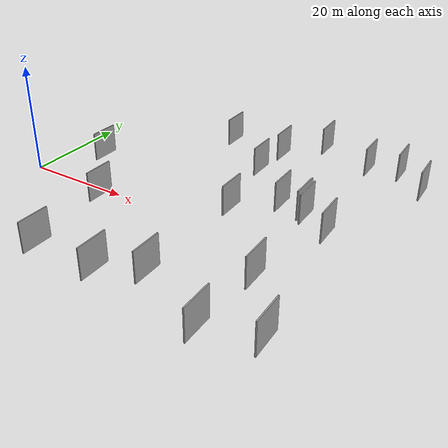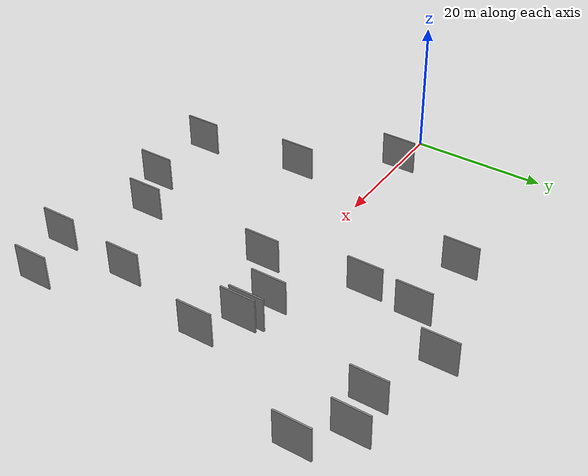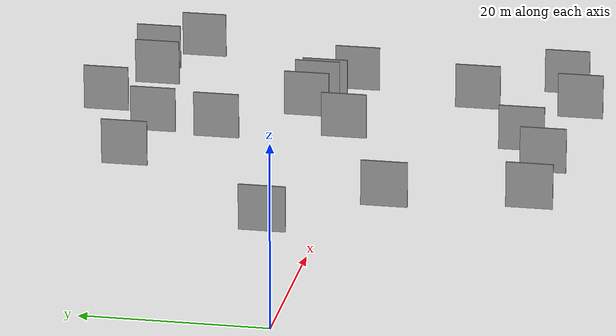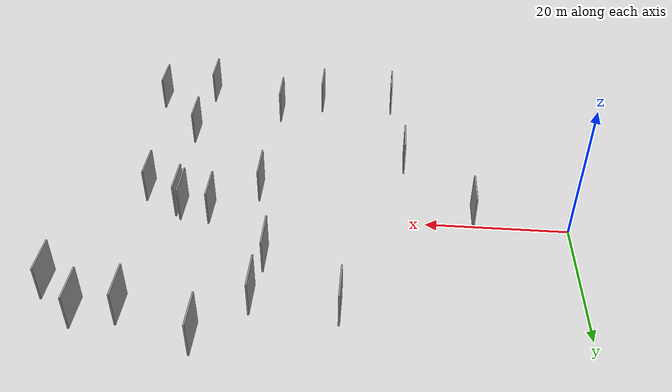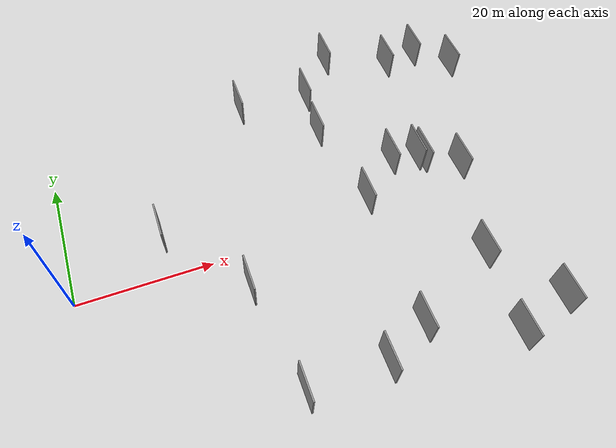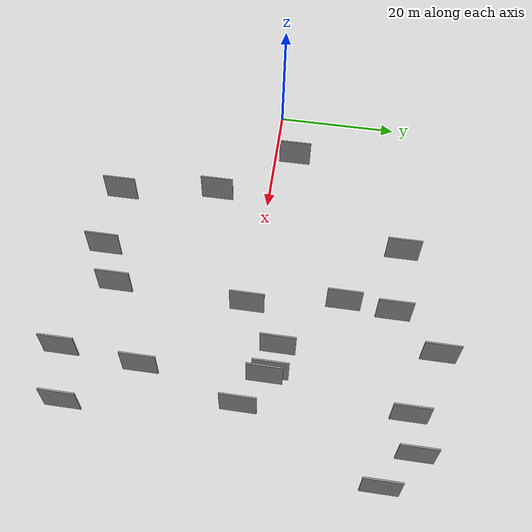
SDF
<sdf version="1.6">
 <world name="default">
  <scene>
   <sky><clouds><speed>12</speed></clouds></sky>
   <ambient>0.4 0.4 0.4 1</ambient>
   <background>0.7 0.7 0.7 1</background>
   <shadows>1</shadows>
  </scene>
  <gravity>0 0 -9.8066</gravity>
  <magnetic_field>6e-06 2.3e-05 -4.2e-05</magnetic_field>
  <physics default="0" name="default_physics" type="ode">
   <ode>
    <solver>
     <type>quick</type>
     <iters>10</iters>
     <sor>1.0</sor>
     <use_dynamic_moi_rescaling>0</use_dynamic_moi_rescaling>
    </solver>
    <constraints>
     <cfm>0</cfm>
     <erp>0.2</erp>
     <contact_max_correcting_vel>100</contact_max_correcting_vel>
     <contact_surface_layer>0.001</contact_surface_layer>
    </constraints>
   </ode>
   <max_step_size>0.004</max_step_size>
   <real_time_factor>1</real_time_factor>
   <real_time_update_rate>250</real_time_update_rate>
  </physics>
  <light name="sun" type="directional">
   <pose>0 0 10 0 0 0</pose>
   <diffuse>0.8 0.8 0.8 1</diffuse>
   <specular>0.2 0.2 0.2 1</specular>
   <attenuation>
    <range>1000</range>
    <constant>0.9</constant>
    <linear>0.01</linear>
    <quadratic>0.001</quadratic>
   </attenuation>
   <direction>-0.5 0.1 -0.9</direction>
  </light>
  <model name="grey_wall_1">
   <static>1</static>
   <pose>14.1617 3.6028 5.0 0.000000 0.000000 1.570796</pose>
   <link name="link">
    <pose>0 0 2.50 0 0 0</pose>
    <collision name="collision"><geometry><box><size>5.00 0.2 5.00</size></box></geometry></collision>
    <visual name="visual">
     <cast_shadows>0</cast_shadows>
     <geometry><box><size>5.00 0.2 5.00</size></box></geometry>
     <material>
      <script>
       <uri>model://grey_wall/materials/scripts</uri>
       <uri>model://grey_wall/materials/textures</uri>
       <name>vrc/grey_wall</name>
      </script>
     </material>
    </visual>
   </link>
  </model>
  <model name="grey_wall_2">
   <static>1</static>
   <pose>41.3663 20.9737 5.0 0.000000 0.000000 1.570796</pose>
   <link name="link">
    <pose>0 0 2.50 0 0 0</pose>
    <collision name="collision"><geometry><box><size>5.00 0.2 5.00</size></box></geometry></collision>
    <visual name="visual">
     <cast_shadows>0</cast_shadows>
     <geometry><box><size>5.00 0.2 5.00</size></box></geometry>
     <material>
      <script>
       <uri>model://grey_wall/materials/scripts</uri>
       <uri>model://grey_wall/materials/textures</uri>
       <name>vrc/grey_wall</name>
      </script>
     </material>
    </visual>
   </link>
  </model>
  <model name="grey_wall_3">
   <static>1</static>
   <pose>43.0630 0.0927 5.0 0.000000 0.000000 1.570796</pose>
   <link name="link">
    <pose>0 0 2.50 0 0 0</pose>
    <collision name="collision"><geometry><box><size>5.00 0.2 5.00</size></box></geometry></collision>
    <visual name="visual">
     <cast_shadows>0</cast_shadows>
     <geometry><box><size>5.00 0.2 5.00</size></box></geometry>
     <material>
      <script>
       <uri>model://grey_wall/materials/scripts</uri>
       <uri>model://grey_wall/materials/textures</uri>
       <name>vrc/grey_wall</name>
      </script>
     </material>
    </visual>
   </link>
  </model>
  <model name="grey_wall_4">
   <static>1</static>
   <pose>23.3538 -7.6842 5.0 0.000000 0.000000 1.570796</pose>
   <link name="link">
    <pose>0 0 2.50 0 0 0</pose>
    <collision name="collision"><geometry><box><size>5.00 0.2 5.00</size></box></geometry></collision>
    <visual name="visual">
     <cast_shadows>0</cast_shadows>
     <geometry><box><size>5.00 0.2 5.00</size></box></geometry>
     <material>
      <script>
       <uri>model://grey_wall/materials/scripts</uri>
       <uri>model://grey_wall/materials/textures</uri>
       <name>vrc/grey_wall</name>
      </script>
     </material>
    </visual>
   </link>
  </model>
  <model name="grey_wall_5">
   <static>1</static>
   <pose>58.4165 1.2532 5.0 0.000000 0.000000 1.570796</pose>
   <link name="link">
    <pose>0 0 2.50 0 0 0</pose>
    <collision name="collision"><geometry><box><size>5.00 0.2 5.00</size></box></geometry></collision>
    <visual name="visual">
     <cast_shadows>0</cast_shadows>
     <geometry><box><size>5.00 0.2 5.00</size></box></geometry>
     <material>
      <script>
       <uri>model://grey_wall/materials/scripts</uri>
       <uri>model://grey_wall/materials/textures</uri>
       <name>vrc/grey_wall</name>
      </script>
     </material>
    </visual>
   </link>
  </model>
  <model name="grey_wall_6">
   <static>1</static>
   <pose>40.6929 13.7889 5.0 0.000000 0.000000 1.570796</pose>
   <link name="link">
    <pose>0 0 2.50 0 0 0</pose>
    <collision name="collision"><geometry><box><size>5.00 0.2 5.00</size></box></geometry></collision>
    <visual name="visual">
     <cast_shadows>0</cast_shadows>
     <geometry><box><size>5.00 0.2 5.00</size></box></geometry>
     <material>
      <script>
       <uri>model://grey_wall/materials/scripts</uri>
       <uri>model://grey_wall/materials/textures</uri>
       <name>vrc/grey_wall</name>
      </script>
     </material>
    </visual>
   </link>
  </model>
  <model name="grey_wall_7">
   <static>1</static>
   <pose>47.1019 27.4755 5.0 0.000000 0.000000 1.570796</pose>
   <link name="link">
    <pose>0 0 2.50 0 0 0</pose>
    <collision name="collision"><geometry><box><size>5.00 0.2 5.00</size></box></geometry></collision>
    <visual name="visual">
     <cast_shadows>0</cast_shadows>
     <geometry><box><size>5.00 0.2 5.00</size></box></geometry>
     <material>
      <script>
       <uri>model://grey_wall/materials/scripts</uri>
       <uri>model://grey_wall/materials/textures</uri>
       <name>vrc/grey_wall</name>
      </script>
     </material>
    </visual>
   </link>
  </model>
  <model name="grey_wall_8">
   <static>1</static>
   <pose>49.0996 5.3220 5.0 0.000000 0.000000 1.570796</pose>
   <link name="link">
    <pose>0 0 2.50 0 0 0</pose>
    <collision name="collision"><geometry><box><size>5.00 0.2 5.00</size></box></geometry></collision>
    <visual name="visual">
     <cast_shadows>0</cast_shadows>
     <geometry><box><size>5.00 0.2 5.00</size></box></geometry>
     <material>
      <script>
       <uri>model://grey_wall/materials/scripts</uri>
       <uri>model://grey_wall/materials/textures</uri>
       <name>vrc/grey_wall</name>
      </script>
     </material>
    </visual>
   </link>
  </model>
  <model name="grey_wall_9">
   <static>1</static>
   <pose>53.7305 4.0978 5.0 0.000000 0.000000 1.570796</pose>
   <link name="link">
    <pose>0 0 2.50 0 0 0</pose>
    <collision name="collision"><geometry><box><size>5.00 0.2 5.00</size></box></geometry></collision>
    <visual name="visual">
     <cast_shadows>0</cast_shadows>
     <geometry><box><size>5.00 0.2 5.00</size></box></geometry>
     <material>
      <script>
       <uri>model://grey_wall/materials/scripts</uri>
       <uri>model://grey_wall/materials/textures</uri>
       <name>vrc/grey_wall</name>
      </script>
     </material>
    </visual>
   </link>
  </model>
  <model name="grey_wall_10">
   <static>1</static>
   <pose>56.4729 23.7045 5.0 0.000000 0.000000 1.570796</pose>
   <link name="link">
    <pose>0 0 2.50 0 0 0</pose>
    <collision name="collision"><geometry><box><size>5.00 0.2 5.00</size></box></geometry></collision>
    <visual name="visual">
     <cast_shadows>0</cast_shadows>
     <geometry><box><size>5.00 0.2 5.00</size></box></geometry>
     <material>
      <script>
       <uri>model://grey_wall/materials/scripts</uri>
       <uri>model://grey_wall/materials/textures</uri>
       <name>vrc/grey_wall</name>
      </script>
     </material>
    </visual>
   </link>
  </model>
  <model name="grey_wall_11">
   <static>1</static>
   <pose>54.6732 -12.9113 5.0 0.000000 0.000000 1.570796</pose>
   <link name="link">
    <pose>0 0 2.50 0 0 0</pose>
    <collision name="collision"><geometry><box><size>5.00 0.2 5.00</size></box></geometry></collision>
    <visual name="visual">
     <cast_shadows>0</cast_shadows>
     <geometry><box><size>5.00 0.2 5.00</size></box></geometry>
     <material>
      <script>
       <uri>model://grey_wall/materials/scripts</uri>
       <uri>model://grey_wall/materials/textures</uri>
       <name>vrc/grey_wall</name>
      </script>
     </material>
    </visual>
   </link>
  </model>
  <model name="grey_wall_12">
   <static>1</static>
   <pose>66.4869 20.3504 5.0 0.000000 0.000000 1.570796</pose>
   <link name="link">
    <pose>0 0 2.50 0 0 0</pose>
    <collision name="collision"><geometry><box><size>5.00 0.2 5.00</size></box></geometry></collision>
    <visual name="visual">
     <cast_shadows>0</cast_shadows>
     <geometry><box><size>5.00 0.2 5.00</size></box></geometry>
     <material>
      <script>
       <uri>model://grey_wall/materials/scripts</uri>
       <uri>model://grey_wall/materials/textures</uri>
       <name>vrc/grey_wall</name>
      </script>
     </material>
    </visual>
   </link>
  </model>
  <model name="grey_wall_13">
   <static>1</static>
   <pose>42.4790 -19.5198 5.0 0.000000 0.000000 1.570796</pose>
   <link name="link">
    <pose>0 0 2.50 0 0 0</pose>
    <collision name="collision"><geometry><box><size>5.00 0.2 5.00</size></box></geometry></collision>
    <visual name="visual">
     <cast_shadows>0</cast_shadows>
     <geometry><box><size>5.00 0.2 5.00</size></box></geometry>
     <material>
      <script>
       <uri>model://grey_wall/materials/scripts</uri>
       <uri>model://grey_wall/materials/textures</uri>
       <name>vrc/grey_wall</name>
      </script>
     </material>
    </visual>
   </link>
  </model>
  <model name="grey_wall_14">
   <static>1</static>
   <pose>52.9929 4.8207 5.0 0.000000 0.000000 1.570796</pose>
   <link name="link">
    <pose>0 0 2.50 0 0 0</pose>
    <collision name="collision"><geometry><box><size>5.00 0.2 5.00</size></box></geometry></collision>
    <visual name="visual">
     <cast_shadows>0</cast_shadows>
     <geometry><box><size>5.00 0.2 5.00</size></box></geometry>
     <material>
      <script>
       <uri>model://grey_wall/materials/scripts</uri>
       <uri>model://grey_wall/materials/textures</uri>
       <name>vrc/grey_wall</name>
      </script>
     </material>
    </visual>
   </link>
  </model>
  <model name="grey_wall_15">
   <static>1</static>
   <pose>53.6625 -24.4670 5.0 0.000000 0.000000 1.570796</pose>
   <link name="link">
    <pose>0 0 2.50 0 0 0</pose>
    <collision name="collision"><geometry><box><size>5.00 0.2 5.00</size></box></geometry></collision>
    <visual name="visual">
     <cast_shadows>0</cast_shadows>
     <geometry><box><size>5.00 0.2 5.00</size></box></geometry>
     <material>
      <script>
       <uri>model://grey_wall/materials/scripts</uri>
       <uri>model://grey_wall/materials/textures</uri>
       <name>vrc/grey_wall</name>
      </script>
     </material>
    </visual>
   </link>
  </model>
  <model name="grey_wall_16">
   <static>1</static>
   <pose>30.7013 21.8368 5.0 0.000000 0.000000 1.570796</pose>
   <link name="link">
    <pose>0 0 2.50 0 0 0</pose>
    <collision name="collision"><geometry><box><size>5.00 0.2 5.00</size></box></geometry></collision>
    <visual name="visual">
     <cast_shadows>0</cast_shadows>
     <geometry><box><size>5.00 0.2 5.00</size></box></geometry>
     <material>
      <script>
       <uri>model://grey_wall/materials/scripts</uri>
       <uri>model://grey_wall/materials/textures</uri>
       <name>vrc/grey_wall</name>
      </script>
     </material>
    </visual>
   </link>
  </model>
  <model name="grey_wall_17">
   <static>1</static>
   <pose>61.7011 24.6337 5.0 0.000000 0.000000 1.570796</pose>
   <link name="link">
    <pose>0 0 2.50 0 0 0</pose>
    <collision name="collision"><geometry><box><size>5.00 0.2 5.00</size></box></geometry></collision>
    <visual name="visual">
     <cast_shadows>0</cast_shadows>
     <geometry><box><size>5.00 0.2 5.00</size></box></geometry>
     <material>
      <script>
       <uri>model://grey_wall/materials/scripts</uri>
       <uri>model://grey_wall/materials/textures</uri>
       <name>vrc/grey_wall</name>
      </script>
     </material>
    </visual>
   </link>
  </model>
  <model name="grey_wall_18">
   <static>1</static>
   <pose>25.4809 -22.7627 5.0 0.000000 0.000000 1.570796</pose>
   <link name="link">
    <pose>0 0 2.50 0 0 0</pose>
    <collision name="collision"><geometry><box><size>5.00 0.2 5.00</size></box></geometry></collision>
    <visual name="visual">
     <cast_shadows>0</cast_shadows>
     <geometry><box><size>5.00 0.2 5.00</size></box></geometry>
     <material>
      <script>
       <uri>model://grey_wall/materials/scripts</uri>
       <uri>model://grey_wall/materials/textures</uri>
       <name>vrc/grey_wall</name>
      </script>
     </material>
    </visual>
   </link>
  </model>
  <model name="grey_wall_19">
   <static>1</static>
   <pose>36.2504 -22.7262 5.0 0.000000 0.000000 1.570796</pose>
   <link name="link">
    <pose>0 0 2.50 0 0 0</pose>
    <collision name="collision"><geometry><box><size>5.00 0.2 5.00</size></box></geometry></collision>
    <visual name="visual">
     <cast_shadows>0</cast_shadows>
     <geometry><box><size>5.00 0.2 5.00</size></box></geometry>
     <material>
      <script>
       <uri>model://grey_wall/materials/scripts</uri>
       <uri>model://grey_wall/materials/textures</uri>
       <name>vrc/grey_wall</name>
      </script>
     </material>
    </visual>
   </link>
  </model>
  <model name="grey_wall_20">
   <static>1</static>
   <pose>61.2708 -22.0055 5.0 0.000000 0.000000 1.570796</pose>
   <link name="link">
    <pose>0 0 2.50 0 0 0</pose>
    <collision name="collision"><geometry><box><size>5.00 0.2 5.00</size></box></geometry></collision>
    <visual name="visual">
     <cast_shadows>0</cast_shadows>
     <geometry><box><size>5.00 0.2 5.00</size></box></geometry>
     <material>
      <script>
       <uri>model://grey_wall/materials/scripts</uri>
       <uri>model://grey_wall/materials/textures</uri>
       <name>vrc/grey_wall</name>
      </script>
     </material>
    </visual>
   </link>
  </model>
 </world>
</sdf>
